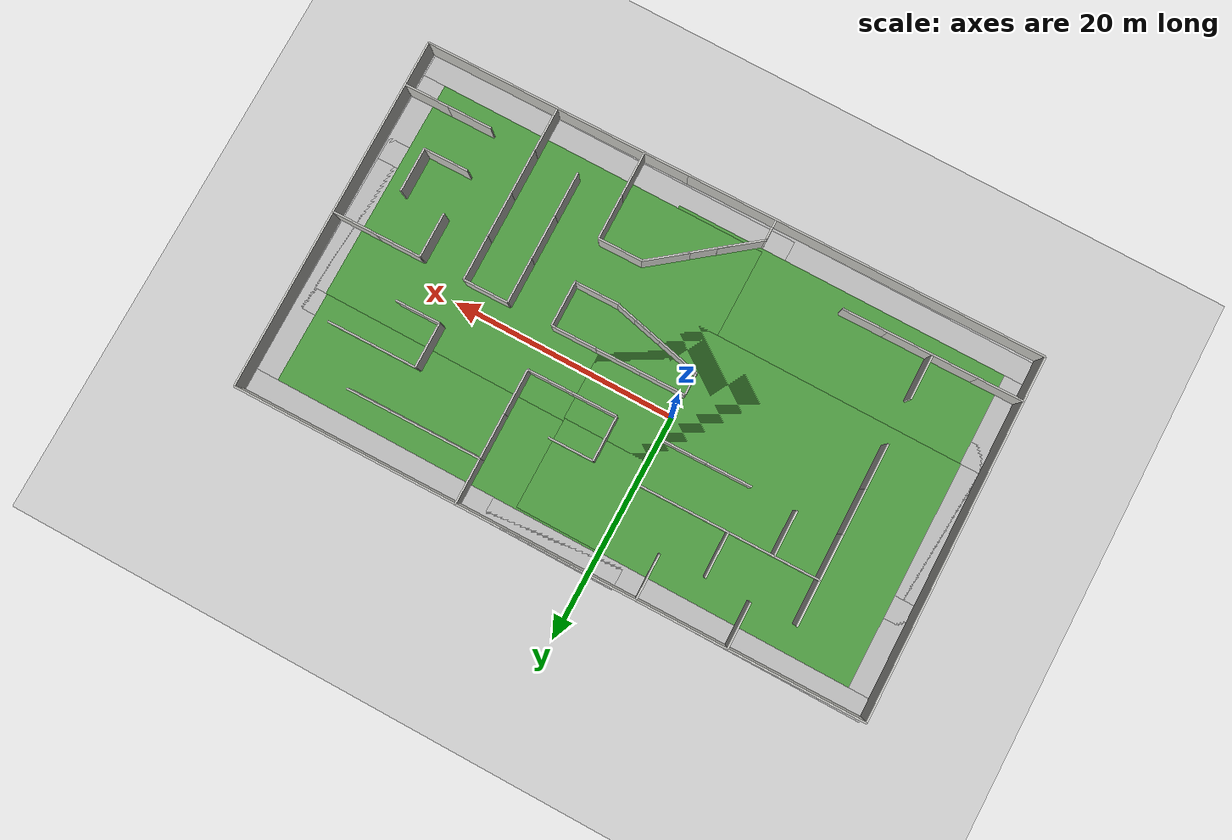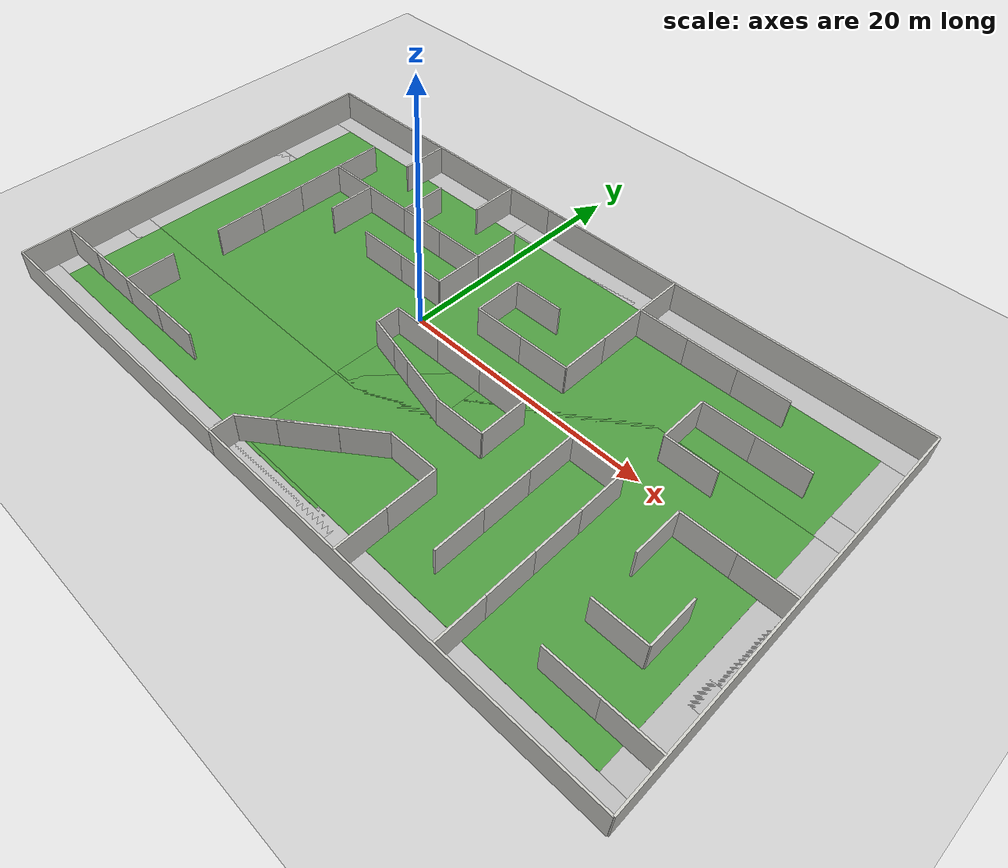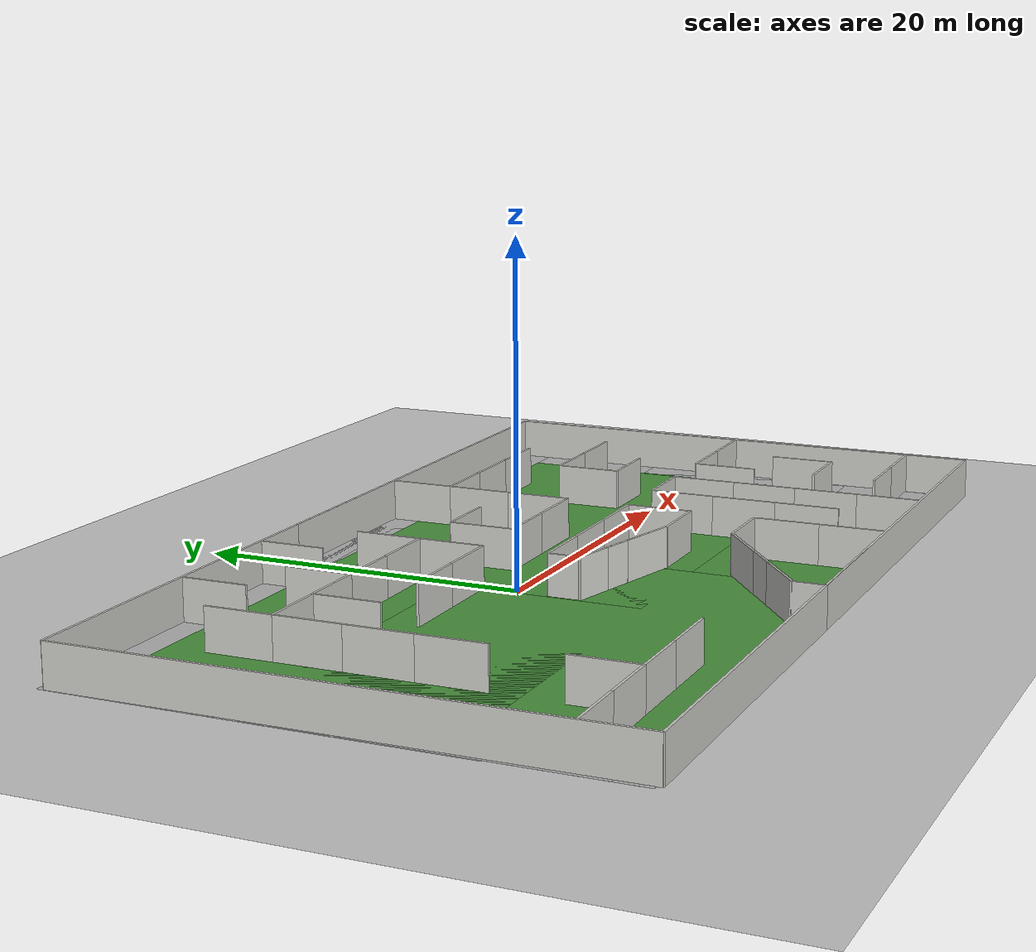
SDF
<sdf version="1.6">
 <world name="default">
  <light name="sun" type="directional">
   <pose>0 0 10 0 -0 0</pose>
   <diffuse>0.8 0.8 0.8 1</diffuse>
   <specular>0.2 0.2 0.2 1</specular>
   <attenuation>
    <range>1000</range>
    <constant>0.9</constant>
    <linear>0.01</linear>
    <quadratic>0.001</quadratic>
   </attenuation>
   <direction>-0.5 0.1 -0.9</direction>
  </light>
  <model name="ground_plane">
   <static>1</static>
   <link name="link">
    <collision name="collision">
     <geometry><plane><normal>0 0 1</normal><size>100 100</size></plane></geometry>
     <surface><friction><ode><mu>100</mu><mu2>50</mu2></ode></friction></surface>
    </collision>
    <visual name="visual">
     <cast_shadows>0</cast_shadows>
     <geometry><plane><normal>0 0 1</normal><size>100 100</size></plane></geometry>
     <material>
      <script><uri>file://media/materials/scripts/gazebo.material</uri><name>Gazebo/Grey</name></script>
     </material>
    </visual>
   </link>
  </model>
  <gravity>0 0 -9.8</gravity>
  <magnetic_field>6e-06 2.3e-05 -4.2e-05</magnetic_field>
  <atmosphere type="adiabatic"/>
  <physics name="default_physics" default="0" type="ode">
   <max_step_size>0.001</max_step_size>
   <real_time_factor>1</real_time_factor>
   <real_time_update_rate>1000</real_time_update_rate>
  </physics>
  <scene><ambient>0.4 0.4 0.4 1</ambient><background>0.7 0.7 0.7 1</background><shadows>1</shadows></scene>
  <spherical_coordinates>
   <surface_model>EARTH_WGS84</surface_model>
   <latitude_deg>0</latitude_deg>
   <longitude_deg>0</longitude_deg>
   <elevation>0</elevation>
   <heading_deg>0</heading_deg>
  </spherical_coordinates>
  <model name="quad_maze">
   <link name="w1::Wall_0">
    <collision name="Wall_0_Collision">
     <pose>0 0 1.25 0 -0 0</pose>
     <geometry><box><size>32 0.15 2.5</size></box></geometry>
    </collision>
    <visual name="Wall_0_Visual">
     <pose>0 0 1.25 0 -0 0</pose>
     <geometry><box><size>32 0.15 2.5</size></box></geometry>
     <material>
      <script><uri>file://media/materials/scripts/gazebo.material</uri><name>Gazebo/CeilingTiled</name></script>
      <ambient>1 1 1 1</ambient>
     </material>
    </visual>
    <pose>0 -40 0 0 -0 0</pose>
   </link>
   <static>1</static>
   <link name="w2::Wall_0">
    <collision name="Wall_0_Collision">
     <pose>0 0 1.25 0 -0 0</pose>
     <geometry><box><size>32 0.15 2.5</size></box></geometry>
    </collision>
    <visual name="Wall_0_Visual">
     <pose>0 0 1.25 0 -0 0</pose>
     <geometry><box><size>32 0.15 2.5</size></box></geometry>
     <material>
      <script><uri>file://media/materials/scripts/gazebo.material</uri><name>Gazebo/CeilingTiled</name></script>
      <ambient>1 1 1 1</ambient>
     </material>
    </visual>
    <pose>0 16 0 0 -0 0</pose>
   </link>
   <static>1</static>
   <link name="w3::Wall_0">
    <collision name="Wall_0_Collision">
     <pose>0 0 1.25 0 -0 0</pose>
     <geometry><box><size>32 0.15 2.5</size></box></geometry>
    </collision>
    <visual name="Wall_0_Visual">
     <pose>0 0 1.25 0 -0 0</pose>
     <geometry><box><size>32 0.15 2.5</size></box></geometry>
     <material>
      <script><uri>file://media/materials/scripts/gazebo.material</uri><name>Gazebo/CeilingTiled</name></script>
      <ambient>1 1 1 1</ambient>
     </material>
    </visual>
    <pose>16 0 0 0 -0 1.5708</pose>
   </link>
   <static>1</static>
   <link name="n1::Wall_0">
    <collision name="Wall_0_Collision">
     <pose>0 0 1.25 0 -0 0</pose>
     <geometry><box><size>32 0.15 2.5</size></box></geometry>
    </collision>
    <visual name="Wall_0_Visual">
     <pose>0 0 1.25 0 -0 0</pose>
     <geometry><box><size>32 0.15 2.5</size></box></geometry>
     <material>
      <script><uri>file://media/materials/scripts/gazebo.material</uri><name>Gazebo/CeilingTiled</name></script>
      <ambient>1 1 1 1</ambient>
     </material>
    </visual>
    <pose>16 -24 0 0 -0 1.5708</pose>
   </link>
   <static>1</static>
   <link name="w4::Wall_0">
    <collision name="Wall_0_Collision">
     <pose>0 0 1.25 0 -0 0</pose>
     <geometry><box><size>32 0.15 2.5</size></box></geometry>
    </collision>
    <visual name="Wall_0_Visual">
     <pose>0 0 1.25 0 -0 0</pose>
     <geometry><box><size>32 0.15 2.5</size></box></geometry>
     <material>
      <script><uri>file://media/materials/scripts/gazebo.material</uri><name>Gazebo/CeilingTiled</name></script>
      <ambient>1 1 1 1</ambient>
     </material>
    </visual>
    <pose>-16 0 0 0 -0 1.5708</pose>
   </link>
   <static>1</static>
   <link name="n2::Wall_0">
    <collision name="Wall_0_Collision">
     <pose>0 0 1.25 0 -0 0</pose>
     <geometry><box><size>32 0.15 2.5</size></box></geometry>
    </collision>
    <visual name="Wall_0_Visual">
     <pose>0 0 1.25 0 -0 0</pose>
     <geometry><box><size>32 0.15 2.5</size></box></geometry>
     <material>
      <script><uri>file://media/materials/scripts/gazebo.material</uri><name>Gazebo/CeilingTiled</name></script>
      <ambient>1 1 1 1</ambient>
     </material>
    </visual>
    <pose>-16 -24 0 0 -0 1.5708</pose>
   </link>
   <static>1</static>
   <link name="w5::Wall_0">
    <collision name="Wall_0_Collision">
     <pose>0 0 1.25 0 -0 0</pose>
     <geometry><box><size>4 0.15 2.5</size></box></geometry>
    </collision>
    <visual name="Wall_0_Visual">
     <pose>0 0 1.25 0 -0 0</pose>
     <geometry><box><size>4 0.15 2.5</size></box></geometry>
     <material>
      <script><uri>file://media/materials/scripts/gazebo.material</uri><name>Gazebo/CeilingTiled</name></script>
      <ambient>1 1 1 1</ambient>
     </material>
    </visual>
    <pose>14 4 0 0 -0 0</pose>
   </link>
   <static>1</static>
   <link name="w6::Wall_0">
    <collision name="Wall_0_Collision">
     <pose>0 0 1.25 0 -0 0</pose>
     <geometry><box><size>4 0.15 2.5</size></box></geometry>
    </collision>
    <visual name="Wall_0_Visual">
     <pose>0 0 1.25 0 -0 0</pose>
     <geometry><box><size>4 0.15 2.5</size></box></geometry>
     <material>
      <script><uri>file://media/materials/scripts/gazebo.material</uri><name>Gazebo/CeilingTiled</name></script>
      <ambient>1 1 1 1</ambient>
     </material>
    </visual>
    <pose>10 4 0 0 -0 0</pose>
   </link>
   <static>1</static>
   <link name="w7::Wall_0">
    <collision name="Wall_0_Collision">
     <pose>0 0 1.25 0 -0 0</pose>
     <geometry><box><size>4 0.15 2.5</size></box></geometry>
    </collision>
    <visual name="Wall_0_Visual">
     <pose>0 0 1.25 0 -0 0</pose>
     <geometry><box><size>4 0.15 2.5</size></box></geometry>
     <material>
      <script><uri>file://media/materials/scripts/gazebo.material</uri><name>Gazebo/CeilingTiled</name></script>
      <ambient>1 1 1 1</ambient>
     </material>
    </visual>
    <pose>6 4 0 0 -0 0</pose>
   </link>
   <static>1</static>
   <link name="w8::Wall_0">
    <collision name="Wall_0_Collision">
     <pose>0 0 1.25 0 -0 0</pose>
     <geometry><box><size>4 0.15 2.5</size></box></geometry>
    </collision>
    <visual name="Wall_0_Visual">
     <pose>0 0 1.25 0 -0 0</pose>
     <geometry><box><size>4 0.15 2.5</size></box></geometry>
     <material>
      <script><uri>file://media/materials/scripts/gazebo.material</uri><name>Gazebo/CeilingTiled</name></script>
      <ambient>1 1 1 1</ambient>
     </material>
    </visual>
    <pose>2 4 0 0 -0 0</pose>
   </link>
   <static>1</static>
   <link name="w9::Wall_0">
    <collision name="Wall_0_Collision">
     <pose>0 0 1.25 0 -0 0</pose>
     <geometry><box><size>4 0.15 2.5</size></box></geometry>
    </collision>
    <visual name="Wall_0_Visual">
     <pose>0 0 1.25 0 -0 0</pose>
     <geometry><box><size>4 0.15 2.5</size></box></geometry>
     <material>
      <script><uri>file://media/materials/scripts/gazebo.material</uri><name>Gazebo/CeilingTiled</name></script>
      <ambient>1 1 1 1</ambient>
     </material>
    </visual>
    <pose>2 8 0 0 -0 0</pose>
   </link>
   <static>1</static>
   <link name="w10::Wall_0">
    <collision name="Wall_0_Collision">
     <pose>0 0 1.25 0 -0 0</pose>
     <geometry><box><size>4 0.15 2.5</size></box></geometry>
    </collision>
    <visual name="Wall_0_Visual">
     <pose>0 0 1.25 0 -0 0</pose>
     <geometry><box><size>4 0.15 2.5</size></box></geometry>
     <material>
      <script><uri>file://media/materials/scripts/gazebo.material</uri><name>Gazebo/CeilingTiled</name></script>
      <ambient>1 1 1 1</ambient>
     </material>
    </visual>
    <pose>6 12 0 0 -0 0</pose>
   </link>
   <static>1</static>
   <link name="w11::Wall_0">
    <collision name="Wall_0_Collision">
     <pose>0 0 1.25 0 -0 0</pose>
     <geometry><box><size>4 0.15 2.5</size></box></geometry>
    </collision>
    <visual name="Wall_0_Visual">
     <pose>0 0 1.25 0 -0 0</pose>
     <geometry><box><size>4 0.15 2.5</size></box></geometry>
     <material>
      <script><uri>file://media/materials/scripts/gazebo.material</uri><name>Gazebo/CeilingTiled</name></script>
      <ambient>1 1 1 1</ambient>
     </material>
    </visual>
    <pose>2 0 0 0 -0 0</pose>
   </link>
   <static>1</static>
   <link name="w12::Wall_0">
    <collision name="Wall_0_Collision">
     <pose>0 0 1.25 0 -0 0</pose>
     <geometry><box><size>4 0.15 2.5</size></box></geometry>
    </collision>
    <visual name="Wall_0_Visual">
     <pose>0 0 1.25 0 -0 0</pose>
     <geometry><box><size>4 0.15 2.5</size></box></geometry>
     <material>
      <script><uri>file://media/materials/scripts/gazebo.material</uri><name>Gazebo/CeilingTiled</name></script>
      <ambient>1 1 1 1</ambient>
     </material>
    </visual>
    <pose>6 0 0 0 -0 0</pose>
   </link>
   <static>1</static>
   <link name="w13::Wall_0">
    <collision name="Wall_0_Collision">
     <pose>0 0 1.25 0 -0 0</pose>
     <geometry><box><size>4 0.15 2.5</size></box></geometry>
    </collision>
    <visual name="Wall_0_Visual">
     <pose>0 0 1.25 0 -0 0</pose>
     <geometry><box><size>4 0.15 2.5</size></box></geometry>
     <material>
      <script><uri>file://media/materials/scripts/gazebo.material</uri><name>Gazebo/CeilingTiled</name></script>
      <ambient>1 1 1 1</ambient>
     </material>
    </visual>
    <pose>10 0 0 0 -0 0</pose>
   </link>
   <static>1</static>
   <link name="w14::Wall_0">
    <collision name="Wall_0_Collision">
     <pose>0 0 1.25 0 -0 0</pose>
     <geometry><box><size>4 0.15 2.5</size></box></geometry>
    </collision>
    <visual name="Wall_0_Visual">
     <pose>0 0 1.25 0 -0 0</pose>
     <geometry><box><size>4 0.15 2.5</size></box></geometry>
     <material>
      <script><uri>file://media/materials/scripts/gazebo.material</uri><name>Gazebo/CeilingTiled</name></script>
      <ambient>1 1 1 1</ambient>
     </material>
    </visual>
    <pose>10 -4 0 0 -0 0</pose>
   </link>
   <static>1</static>
   <link name="w15::Wall_0">
    <collision name="Wall_0_Collision">
     <pose>0 0 1.25 0 -0 0</pose>
     <geometry><box><size>4 0.15 2.5</size></box></geometry>
    </collision>
    <visual name="Wall_0_Visual">
     <pose>0 0 1.25 0 -0 0</pose>
     <geometry><box><size>4 0.15 2.5</size></box></geometry>
     <material>
      <script><uri>file://media/materials/scripts/gazebo.material</uri><name>Gazebo/CeilingTiled</name></script>
      <ambient>1 1 1 1</ambient>
     </material>
    </visual>
    <pose>14 -4 0 0 -0 0</pose>
   </link>
   <static>1</static>
   <link name="w16::Wall_0">
    <collision name="Wall_0_Collision">
     <pose>0 0 1.25 0 -0 0</pose>
     <geometry><box><size>4 0.15 2.5</size></box></geometry>
    </collision>
    <visual name="Wall_0_Visual">
     <pose>0 0 1.25 0 -0 0</pose>
     <geometry><box><size>4 0.15 2.5</size></box></geometry>
     <material>
      <script><uri>file://media/materials/scripts/gazebo.material</uri><name>Gazebo/CeilingTiled</name></script>
      <ambient>1 1 1 1</ambient>
     </material>
    </visual>
    <pose>2 -4 0 0 -0 0</pose>
   </link>
   <static>1</static>
   <link name="w17::Wall_0">
    <collision name="Wall_0_Collision">
     <pose>0 0 1.25 0 -0 0</pose>
     <geometry><box><size>4 0.15 2.5</size></box></geometry>
    </collision>
    <visual name="Wall_0_Visual">
     <pose>0 0 1.25 0 -0 0</pose>
     <geometry><box><size>4 0.15 2.5</size></box></geometry>
     <material>
      <script><uri>file://media/materials/scripts/gazebo.material</uri><name>Gazebo/CeilingTiled</name></script>
      <ambient>1 1 1 1</ambient>
     </material>
    </visual>
    <pose>-6 -12 0 0 -0 0</pose>
   </link>
   <static>1</static>
   <link name="w18::Wall_0">
    <collision name="Wall_0_Collision">
     <pose>0 0 1.25 0 -0 0</pose>
     <geometry><box><size>4 0.15 2.5</size></box></geometry>
    </collision>
    <visual name="Wall_0_Visual">
     <pose>0 0 1.25 0 -0 0</pose>
     <geometry><box><size>4 0.15 2.5</size></box></geometry>
     <material>
      <script><uri>file://media/materials/scripts/gazebo.material</uri><name>Gazebo/CeilingTiled</name></script>
      <ambient>1 1 1 1</ambient>
     </material>
    </visual>
    <pose>-6 -4 0 0 -0 0</pose>
   </link>
   <static>1</static>
   <link name="w19::Wall_0">
    <collision name="Wall_0_Collision">
     <pose>0 0 1.25 0 -0 0</pose>
     <geometry><box><size>4 0.15 2.5</size></box></geometry>
    </collision>
    <visual name="Wall_0_Visual">
     <pose>0 0 1.25 0 -0 0</pose>
     <geometry><box><size>4 0.15 2.5</size></box></geometry>
     <material>
      <script><uri>file://media/materials/scripts/gazebo.material</uri><name>Gazebo/CeilingTiled</name></script>
      <ambient>1 1 1 1</ambient>
     </material>
    </visual>
    <pose>-10 -4 0 0 -0 0</pose>
   </link>
   <static>1</static>
   <link name="w20::Wall_0">
    <collision name="Wall_0_Collision">
     <pose>0 0 1.25 0 -0 0</pose>
     <geometry><box><size>4 0.15 2.5</size></box></geometry>
    </collision>
    <visual name="Wall_0_Visual">
     <pose>0 0 1.25 0 -0 0</pose>
     <geometry><box><size>4 0.15 2.5</size></box></geometry>
     <material>
      <script><uri>file://media/materials/scripts/gazebo.material</uri><name>Gazebo/CeilingTiled</name></script>
      <ambient>1 1 1 1</ambient>
     </material>
    </visual>
    <pose>-14 -4 0 0 -0 0</pose>
   </link>
   <static>1</static>
   <link name="w21::Wall_0">
    <collision name="Wall_0_Collision">
     <pose>0 0 1.25 0 -0 0</pose>
     <geometry><box><size>4 0.15 2.5</size></box></geometry>
    </collision>
    <visual name="Wall_0_Visual">
     <pose>0 0 1.25 0 -0 0</pose>
     <geometry><box><size>4 0.15 2.5</size></box></geometry>
     <material>
      <script><uri>file://media/materials/scripts/gazebo.material</uri><name>Gazebo/CeilingTiled</name></script>
      <ambient>1 1 1 1</ambient>
     </material>
    </visual>
    <pose>-6 4 0 0 -0 0</pose>
   </link>
   <static>1</static>
   <link name="v1::Wall_0">
    <collision name="Wall_0_Collision">
     <pose>0 0 1.25 0 -0 0</pose>
     <geometry><box><size>4 0.15 2.5</size></box></geometry>
    </collision>
    <visual name="Wall_0_Visual">
     <pose>0 0 1.25 0 -0 0</pose>
     <geometry><box><size>4 0.15 2.5</size></box></geometry>
     <material>
      <script><uri>file://media/materials/scripts/gazebo.material</uri><name>Gazebo/CeilingTiled</name></script>
      <ambient>1 1 1 1</ambient>
     </material>
    </visual>
    <pose>0 2 0 0 -0 1.5708</pose>
   </link>
   <static>1</static>
   <link name="v2::Wall_0">
    <collision name="Wall_0_Collision">
     <pose>0 0 1.25 0 -0 0</pose>
     <geometry><box><size>4 0.15 2.5</size></box></geometry>
    </collision>
    <visual name="Wall_0_Visual">
     <pose>0 0 1.25 0 -0 0</pose>
     <geometry><box><size>4 0.15 2.5</size></box></geometry>
     <material>
      <script><uri>file://media/materials/scripts/gazebo.material</uri><name>Gazebo/CeilingTiled</name></script>
      <ambient>1 1 1 1</ambient>
     </material>
    </visual>
    <pose>0 10 0 0 -0 1.5708</pose>
   </link>
   <static>1</static>
   <link name="v3::Wall_0">
    <collision name="Wall_0_Collision">
     <pose>0 0 1.25 0 -0 0</pose>
     <geometry><box><size>4 0.15 2.5</size></box></geometry>
    </collision>
    <visual name="Wall_0_Visual">
     <pose>0 0 1.25 0 -0 0</pose>
     <geometry><box><size>4 0.15 2.5</size></box></geometry>
     <material>
      <script><uri>file://media/materials/scripts/gazebo.material</uri><name>Gazebo/CeilingTiled</name></script>
      <ambient>1 1 1 1</ambient>
     </material>
    </visual>
    <pose>0 14 0 0 -0 1.5708</pose>
   </link>
   <static>1</static>
   <link name="v4::Wall_0">
    <collision name="Wall_0_Collision">
     <pose>0 0 1.25 0 -0 0</pose>
     <geometry><box><size>4 0.15 2.5</size></box></geometry>
    </collision>
    <visual name="Wall_0_Visual">
     <pose>0 0 1.25 0 -0 0</pose>
     <geometry><box><size>4 0.15 2.5</size></box></geometry>
     <material>
      <script><uri>file://media/materials/scripts/gazebo.material</uri><name>Gazebo/CeilingTiled</name></script>
      <ambient>1 1 1 1</ambient>
     </material>
    </visual>
    <pose>0 -6 0 0 -0 1.5708</pose>
   </link>
   <static>1</static>
   <link name="v5::Wall_0">
    <collision name="Wall_0_Collision">
     <pose>0 0 1.25 0 -0 0</pose>
     <geometry><box><size>4 0.15 2.5</size></box></geometry>
    </collision>
    <visual name="Wall_0_Visual">
     <pose>0 0 1.25 0 -0 0</pose>
     <geometry><box><size>4 0.15 2.5</size></box></geometry>
     <material>
      <script><uri>file://media/materials/scripts/gazebo.material</uri><name>Gazebo/CeilingTiled</name></script>
      <ambient>1 1 1 1</ambient>
     </material>
    </visual>
    <pose>4 -6 0 0 -0 1.5708</pose>
   </link>
   <static>1</static>
   <link name="v6::Wall_0">
    <collision name="Wall_0_Collision">
     <pose>0 0 1.25 0 -0 0</pose>
     <geometry><box><size>4 0.15 2.5</size></box></geometry>
    </collision>
    <visual name="Wall_0_Visual">
     <pose>0 0 1.25 0 -0 0</pose>
     <geometry><box><size>4 0.15 2.5</size></box></geometry>
     <material>
      <script><uri>file://media/materials/scripts/gazebo.material</uri><name>Gazebo/CeilingTiled</name></script>
      <ambient>1 1 1 1</ambient>
     </material>
    </visual>
    <pose>8 -6 0 0 -0 1.5708</pose>
   </link>
   <static>1</static>
   <link name="v7::Wall_0">
    <collision name="Wall_0_Collision">
     <pose>0 0 1.25 0 -0 0</pose>
     <geometry><box><size>4 0.15 2.5</size></box></geometry>
    </collision>
    <visual name="Wall_0_Visual">
     <pose>0 0 1.25 0 -0 0</pose>
     <geometry><box><size>4 0.15 2.5</size></box></geometry>
     <material>
      <script><uri>file://media/materials/scripts/gazebo.material</uri><name>Gazebo/CeilingTiled</name></script>
      <ambient>1 1 1 1</ambient>
     </material>
    </visual>
    <pose>-4 -6 0 0 -0 1.5708</pose>
   </link>
   <static>1</static>
   <link name="v8::Wall_0">
    <collision name="Wall_0_Collision">
     <pose>0 0 1.25 0 -0 0</pose>
     <geometry><box><size>4 0.15 2.5</size></box></geometry>
    </collision>
    <visual name="Wall_0_Visual">
     <pose>0 0 1.25 0 -0 0</pose>
     <geometry><box><size>4 0.15 2.5</size></box></geometry>
     <material>
      <script><uri>file://media/materials/scripts/gazebo.material</uri><name>Gazebo/CeilingTiled</name></script>
      <ambient>1 1 1 1</ambient>
     </material>
    </visual>
    <pose>-8 -10 0 0 -0 1.5708</pose>
   </link>
   <static>1</static>
   <link name="v9::Wall_0">
    <collision name="Wall_0_Collision">
     <pose>0 0 1.25 0 -0 0</pose>
     <geometry><box><size>4 0.15 2.5</size></box></geometry>
    </collision>
    <visual name="Wall_0_Visual">
     <pose>0 0 1.25 0 -0 0</pose>
     <geometry><box><size>4 0.15 2.5</size></box></geometry>
     <material>
      <script><uri>file://media/materials/scripts/gazebo.material</uri><name>Gazebo/CeilingTiled</name></script>
      <ambient>1 1 1 1</ambient>
     </material>
    </visual>
    <pose>-4 -10 0 0 -0 1.5708</pose>
   </link>
   <static>1</static>
   <link name="v10::Wall_0">
    <collision name="Wall_0_Collision">
     <pose>0 0 1.25 0 -0 0</pose>
     <geometry><box><size>4 0.15 2.5</size></box></geometry>
    </collision>
    <visual name="Wall_0_Visual">
     <pose>0 0 1.25 0 -0 0</pose>
     <geometry><box><size>4 0.15 2.5</size></box></geometry>
     <material>
      <script><uri>file://media/materials/scripts/gazebo.material</uri><name>Gazebo/CeilingTiled</name></script>
      <ambient>1 1 1 1</ambient>
     </material>
    </visual>
    <pose>-12 2 0 0 -0 1.5708</pose>
   </link>
   <static>1</static>
   <link name="v11::Wall_0">
    <collision name="Wall_0_Collision">
     <pose>0 0 1.25 0 -0 0</pose>
     <geometry><box><size>4 0.15 2.5</size></box></geometry>
    </collision>
    <visual name="Wall_0_Visual">
     <pose>0 0 1.25 0 -0 0</pose>
     <geometry><box><size>4 0.15 2.5</size></box></geometry>
     <material>
      <script><uri>file://media/materials/scripts/gazebo.material</uri><name>Gazebo/CeilingTiled</name></script>
      <ambient>1 1 1 1</ambient>
     </material>
    </visual>
    <pose>-12 6 0 0 -0 1.5708</pose>
   </link>
   <static>1</static>
   <link name="v12::Wall_0">
    <collision name="Wall_0_Collision">
     <pose>0 0 1.25 0 -0 0</pose>
     <geometry><box><size>4 0.15 2.5</size></box></geometry>
    </collision>
    <visual name="Wall_0_Visual">
     <pose>0 0 1.25 0 -0 0</pose>
     <geometry><box><size>4 0.15 2.5</size></box></geometry>
     <material>
      <script><uri>file://media/materials/scripts/gazebo.material</uri><name>Gazebo/CeilingTiled</name></script>
      <ambient>1 1 1 1</ambient>
     </material>
    </visual>
    <pose>-8 6 0 0 -0 1.5708</pose>
   </link>
   <static>1</static>
   <link name="v13::Wall_0">
    <collision name="Wall_0_Collision">
     <pose>0 0 1.25 0 -0 0</pose>
     <geometry><box><size>4 0.15 2.5</size></box></geometry>
    </collision>
    <visual name="Wall_0_Visual">
     <pose>0 0 1.25 0 -0 0</pose>
     <geometry><box><size>4 0.15 2.5</size></box></geometry>
     <material>
      <script><uri>file://media/materials/scripts/gazebo.material</uri><name>Gazebo/CeilingTiled</name></script>
      <ambient>1 1 1 1</ambient>
     </material>
    </visual>
    <pose>-4 6 0 0 -0 1.5708</pose>
   </link>
   <static>1</static>
   <link name="v14::Wall_0">
    <collision name="Wall_0_Collision">
     <pose>0 0 1.25 0 -0 0</pose>
     <geometry><box><size>4 0.15 2.5</size></box></geometry>
    </collision>
    <visual name="Wall_0_Visual">
     <pose>0 0 1.25 0 -0 0</pose>
     <geometry><box><size>4 0.15 2.5</size></box></geometry>
     <material>
      <script><uri>file://media/materials/scripts/gazebo.material</uri><name>Gazebo/CeilingTiled</name></script>
      <ambient>1 1 1 1</ambient>
     </material>
    </visual>
    <pose>-8 10 0 0 -0 1.5708</pose>
   </link>
   <static>1</static>
   <link name="v15::Wall_0">
    <collision name="Wall_0_Collision">
     <pose>0 0 1.25 0 -0 0</pose>
     <geometry><box><size>4 0.15 2.5</size></box></geometry>
    </collision>
    <visual name="Wall_0_Visual">
     <pose>0 0 1.25 0 -0 0</pose>
     <geometry><box><size>4 0.15 2.5</size></box></geometry>
     <material>
      <script><uri>file://media/materials/scripts/gazebo.material</uri><name>Gazebo/CeilingTiled</name></script>
      <ambient>1 1 1 1</ambient>
     </material>
    </visual>
    <pose>-12 -2 0 0 -0 1.5708</pose>
   </link>
   <static>1</static>
   <link name="v16::Wall_0">
    <collision name="Wall_0_Collision">
     <pose>0 0 1.25 0 -0 0</pose>
     <geometry><box><size>4 0.15 2.5</size></box></geometry>
    </collision>
    <visual name="Wall_0_Visual">
     <pose>0 0 1.25 0 -0 0</pose>
     <geometry><box><size>4 0.15 2.5</size></box></geometry>
     <material>
      <script><uri>file://media/materials/scripts/gazebo.material</uri><name>Gazebo/CeilingTiled</name></script>
      <ambient>1 1 1 1</ambient>
     </material>
    </visual>
    <pose>8 10 0 0 -0 1.5708</pose>
   </link>
   <static>1</static>
   <link name="v17::Wall_0">
    <collision name="Wall_0_Collision">
     <pose>0 0 1.25 0 -0 0</pose>
     <geometry><box><size>4 0.15 2.5</size></box></geometry>
    </collision>
    <visual name="Wall_0_Visual">
     <pose>0 0 1.25 0 -0 0</pose>
     <geometry><box><size>4 0.15 2.5</size></box></geometry>
     <material>
      <script><uri>file://media/materials/scripts/gazebo.material</uri><name>Gazebo/CeilingTiled</name></script>
      <ambient>1 1 1 1</ambient>
     </material>
    </visual>
    <pose>12 10 0 0 -0 1.5708</pose>
   </link>
   <static>1</static>
   <link name="v18::Wall_0">
    <collision name="Wall_0_Collision">
     <pose>0 0 1.25 0 -0 0</pose>
     <geometry><box><size>4 0.15 2.5</size></box></geometry>
    </collision>
    <visual name="Wall_0_Visual">
     <pose>0 0 1.25 0 -0 0</pose>
     <geometry><box><size>4 0.15 2.5</size></box></geometry>
     <material>
      <script><uri>file://media/materials/scripts/gazebo.material</uri><name>Gazebo/CeilingTiled</name></script>
      <ambient>1 1 1 1</ambient>
     </material>
    </visual>
    <pose>12 14 0 0 -0 1.5708</pose>
   </link>
   <static>1</static>
   <link name="v19::Wall_0">
    <collision name="Wall_0_Collision">
     <pose>0 0 1.25 0 -0 0</pose>
     <geometry><box><size>4 0.15 2.5</size></box></geometry>
    </collision>
    <visual name="Wall_0_Visual">
     <pose>0 0 1.25 0 -0 0</pose>
     <geometry><box><size>4 0.15 2.5</size></box></geometry>
     <material>
      <script><uri>file://media/materials/scripts/gazebo.material</uri><name>Gazebo/CeilingTiled</name></script>
      <ambient>1 1 1 1</ambient>
     </material>
    </visual>
    <pose>12 10 0 0 -0 1.5708</pose>
   </link>
   <static>1</static>
   <link name="v20::Wall_0">
    <collision name="Wall_0_Collision">
     <pose>0 0 1.25 0 -0 0</pose>
     <geometry><box><size>4 0.15 2.5</size></box></geometry>
    </collision>
    <visual name="Wall_0_Visual">
     <pose>0 0 1.25 0 -0 0</pose>
     <geometry><box><size>4 0.15 2.5</size></box></geometry>
     <material>
      <script><uri>file://media/materials/scripts/gazebo.material</uri><name>Gazebo/CeilingTiled</name></script>
      <ambient>1 1 1 1</ambient>
     </material>
    </visual>
    <pose>-8 -18 0 0 -0 1.5708</pose>
   </link>
   <static>1</static>
   <link name="v21::Wall_0">
    <collision name="Wall_0_Collision">
     <pose>0 0 1.25 0 -0 0</pose>
     <geometry><box><size>4 0.15 2.5</size></box></geometry>
    </collision>
    <visual name="Wall_0_Visual">
     <pose>0 0 1.25 0 -0 0</pose>
     <geometry><box><size>4 0.15 2.5</size></box></geometry>
     <material>
      <script><uri>file://media/materials/scripts/gazebo.material</uri><name>Gazebo/CeilingTiled</name></script>
      <ambient>1 1 1 1</ambient>
     </material>
    </visual>
    <pose>-8 -22 0 0 -0 1.5708</pose>
   </link>
   <static>1</static>
   <link name="n3::Wall_0">
    <collision name="Wall_0_Collision">
     <pose>0 0 1.25 0 -0 0</pose>
     <geometry><box><size>4 0.15 2.5</size></box></geometry>
    </collision>
    <visual name="Wall_0_Visual">
     <pose>0 0 1.25 0 -0 0</pose>
     <geometry><box><size>4 0.15 2.5</size></box></geometry>
     <material>
      <script><uri>file://media/materials/scripts/gazebo.material</uri><name>Gazebo/CeilingTiled</name></script>
      <ambient>1 1 1 1</ambient>
     </material>
    </visual>
    <pose>0 -10 0 0 -0 1.5708</pose>
   </link>
   <static>1</static>
   <link name="n4::Wall_0">
    <collision name="Wall_0_Collision">
     <pose>0 0 1.25 0 -0 0</pose>
     <geometry><box><size>4 0.15 2.5</size></box></geometry>
    </collision>
    <visual name="Wall_0_Visual">
     <pose>0 0 1.25 0 -0 0</pose>
     <geometry><box><size>4 0.15 2.5</size></box></geometry>
     <material>
      <script><uri>file://media/materials/scripts/gazebo.material</uri><name>Gazebo/CeilingTiled</name></script>
      <ambient>1 1 1 1</ambient>
     </material>
    </visual>
    <pose>0 -14 0 0 -0 1.5708</pose>
   </link>
   <static>1</static>
   <link name="n5::Wall_0">
    <collision name="Wall_0_Collision">
     <pose>0 0 1.25 0 -0 0</pose>
     <geometry><box><size>4 0.15 2.5</size></box></geometry>
    </collision>
    <visual name="Wall_0_Visual">
     <pose>0 0 1.25 0 -0 0</pose>
     <geometry><box><size>4 0.15 2.5</size></box></geometry>
     <material>
      <script><uri>file://media/materials/scripts/gazebo.material</uri><name>Gazebo/CeilingTiled</name></script>
      <ambient>1 1 1 1</ambient>
     </material>
    </visual>
    <pose>-4 -18 0 0 -0 1.5708</pose>
   </link>
   <static>1</static>
   <link name="n6::Wall_0">
    <collision name="Wall_0_Collision">
     <pose>0 0 1.25 0 -0 0</pose>
     <geometry><box><size>4 0.15 2.5</size></box></geometry>
    </collision>
    <visual name="Wall_0_Visual">
     <pose>0 0 1.25 0 -0 0</pose>
     <geometry><box><size>4 0.15 2.5</size></box></geometry>
     <material>
      <script><uri>file://media/materials/scripts/gazebo.material</uri><name>Gazebo/CeilingTiled</name></script>
      <ambient>1 1 1 1</ambient>
     </material>
    </visual>
    <pose>-4 -22 0 0 -0 1.5708</pose>
   </link>
   <static>1</static>
   <link name="n7::Wall_0">
    <collision name="Wall_0_Collision">
     <pose>0 0 1.25 0 -0 0</pose>
     <geometry><box><size>4 0.15 2.5</size></box></geometry>
    </collision>
    <visual name="Wall_0_Visual">
     <pose>0 0 1.25 0 -0 0</pose>
     <geometry><box><size>4 0.15 2.5</size></box></geometry>
     <material>
      <script><uri>file://media/materials/scripts/gazebo.material</uri><name>Gazebo/CeilingTiled</name></script>
      <ambient>1 1 1 1</ambient>
     </material>
    </visual>
    <pose>-8 -26 0 0 -0 1.5708</pose>
   </link>
   <static>1</static>
   <link name="n8::Wall_0">
    <collision name="Wall_0_Collision">
     <pose>0 0 1.25 0 -0 0</pose>
     <geometry><box><size>4 0.15 2.5</size></box></geometry>
    </collision>
    <visual name="Wall_0_Visual">
     <pose>0 0 1.25 0 -0 0</pose>
     <geometry><box><size>4 0.15 2.5</size></box></geometry>
     <material>
      <script><uri>file://media/materials/scripts/gazebo.material</uri><name>Gazebo/CeilingTiled</name></script>
      <ambient>1 1 1 1</ambient>
     </material>
    </visual>
    <pose>-8 -30 0 0 -0 1.5708</pose>
   </link>
   <static>1</static>
   <link name="n11::Wall_0">
    <collision name="Wall_0_Collision">
     <pose>0 0 1.25 0 -0 0</pose>
     <geometry><box><size>4 0.15 2.5</size></box></geometry>
    </collision>
    <visual name="Wall_0_Visual">
     <pose>0 0 1.25 0 -0 0</pose>
     <geometry><box><size>4 0.15 2.5</size></box></geometry>
     <material>
      <script><uri>file://media/materials/scripts/gazebo.material</uri><name>Gazebo/CeilingTiled</name></script>
      <ambient>1 1 1 1</ambient>
     </material>
    </visual>
    <pose>12 -30 0 0 -0 1.5708</pose>
   </link>
   <static>1</static>
   <link name="n12::Wall_0">
    <collision name="Wall_0_Collision">
     <pose>0 0 1.25 0 -0 0</pose>
     <geometry><box><size>4 0.15 2.5</size></box></geometry>
    </collision>
    <visual name="Wall_0_Visual">
     <pose>0 0 1.25 0 -0 0</pose>
     <geometry><box><size>4 0.15 2.5</size></box></geometry>
     <material>
      <script><uri>file://media/materials/scripts/gazebo.material</uri><name>Gazebo/CeilingTiled</name></script>
      <ambient>1 1 1 1</ambient>
     </material>
    </visual>
    <pose>12 -26 0 0 -0 1.5708</pose>
   </link>
   <static>1</static>
   <link name="n13::Wall_0">
    <collision name="Wall_0_Collision">
     <pose>0 0 1.25 0 -0 0</pose>
     <geometry><box><size>4 0.15 2.5</size></box></geometry>
    </collision>
    <visual name="Wall_0_Visual">
     <pose>0 0 1.25 0 -0 0</pose>
     <geometry><box><size>4 0.15 2.5</size></box></geometry>
     <material>
      <script><uri>file://media/materials/scripts/gazebo.material</uri><name>Gazebo/CeilingTiled</name></script>
      <ambient>1 1 1 1</ambient>
     </material>
    </visual>
    <pose>12 -34 0 0 -0 1.5708</pose>
   </link>
   <static>1</static>
   <link name="n14::Wall_0">
    <collision name="Wall_0_Collision">
     <pose>0 0 1.25 0 -0 0</pose>
     <geometry><box><size>4 0.15 2.5</size></box></geometry>
    </collision>
    <visual name="Wall_0_Visual">
     <pose>0 0 1.25 0 -0 0</pose>
     <geometry><box><size>4 0.15 2.5</size></box></geometry>
     <material>
      <script><uri>file://media/materials/scripts/gazebo.material</uri><name>Gazebo/CeilingTiled</name></script>
      <ambient>1 1 1 1</ambient>
     </material>
    </visual>
    <pose>12 -38 0 0 -0 1.5708</pose>
   </link>
   <static>1</static>
   <link name="n15::Wall_0">
    <collision name="Wall_0_Collision">
     <pose>0 0 1.25 0 -0 0</pose>
     <geometry><box><size>4 0.15 2.5</size></box></geometry>
    </collision>
    <visual name="Wall_0_Visual">
     <pose>0 0 1.25 0 -0 0</pose>
     <geometry><box><size>4 0.15 2.5</size></box></geometry>
     <material>
      <script><uri>file://media/materials/scripts/gazebo.material</uri><name>Gazebo/CeilingTiled</name></script>
      <ambient>1 1 1 1</ambient>
     </material>
    </visual>
    <pose>-10 -32 0 0 -0 0</pose>
   </link>
   <static>1</static>
   <link name="n16::Wall_0">
    <collision name="Wall_0_Collision">
     <pose>0 0 1.25 0 -0 0</pose>
     <geometry><box><size>4 0.15 2.5</size></box></geometry>
    </collision>
    <visual name="Wall_0_Visual">
     <pose>0 0 1.25 0 -0 0</pose>
     <geometry><box><size>4 0.15 2.5</size></box></geometry>
     <material>
      <script><uri>file://media/materials/scripts/gazebo.material</uri><name>Gazebo/CeilingTiled</name></script>
      <ambient>1 1 1 1</ambient>
     </material>
    </visual>
    <pose>-6 -32 0 0 -0 0</pose>
   </link>
   <static>1</static>
   <link name="n17::Wall_0">
    <collision name="Wall_0_Collision">
     <pose>0 0 1.25 0 -0 0</pose>
     <geometry><box><size>4 0.15 2.5</size></box></geometry>
    </collision>
    <visual name="Wall_0_Visual">
     <pose>0 0 1.25 0 -0 0</pose>
     <geometry><box><size>4 0.15 2.5</size></box></geometry>
     <material>
      <script><uri>file://media/materials/scripts/gazebo.material</uri><name>Gazebo/CeilingTiled</name></script>
      <ambient>1 1 1 1</ambient>
     </material>
    </visual>
    <pose>-2 -32 0 0 -0 0</pose>
   </link>
   <static>1</static>
   <link name="n18::Wall_0">
    <collision name="Wall_0_Collision">
     <pose>0 0 1.25 0 -0 0</pose>
     <geometry><box><size>4 0.15 2.5</size></box></geometry>
    </collision>
    <visual name="Wall_0_Visual">
     <pose>0 0 1.25 0 -0 0</pose>
     <geometry><box><size>4 0.15 2.5</size></box></geometry>
     <material>
      <script><uri>file://media/materials/scripts/gazebo.material</uri><name>Gazebo/CeilingTiled</name></script>
      <ambient>1 1 1 1</ambient>
     </material>
    </visual>
    <pose>2 -32 0 0 -0 0</pose>
   </link>
   <static>1</static>
   <link name="n19::Wall_0">
    <collision name="Wall_0_Collision">
     <pose>0 0 1.25 0 -0 0</pose>
     <geometry><box><size>4 0.15 2.5</size></box></geometry>
    </collision>
    <visual name="Wall_0_Visual">
     <pose>0 0 1.25 0 -0 0</pose>
     <geometry><box><size>4 0.15 2.5</size></box></geometry>
     <material>
      <script><uri>file://media/materials/scripts/gazebo.material</uri><name>Gazebo/CeilingTiled</name></script>
      <ambient>1 1 1 1</ambient>
     </material>
    </visual>
    <pose>10 -32 0 0 -0 0</pose>
   </link>
   <static>1</static>
   <link name="n20::Wall_0">
    <collision name="Wall_0_Collision">
     <pose>0 0 1.25 0 -0 0</pose>
     <geometry><box><size>4 0.15 2.5</size></box></geometry>
    </collision>
    <visual name="Wall_0_Visual">
     <pose>0 0 1.25 0 -0 0</pose>
     <geometry><box><size>4 0.15 2.5</size></box></geometry>
     <material>
      <script><uri>file://media/materials/scripts/gazebo.material</uri><name>Gazebo/CeilingTiled</name></script>
      <ambient>1 1 1 1</ambient>
     </material>
    </visual>
    <pose>-10 -24 0 0 -0 0</pose>
   </link>
   <static>1</static>
   <link name="n21::Wall_0">
    <collision name="Wall_0_Collision">
     <pose>0 0 1.25 0 -0 0</pose>
     <geometry><box><size>4 0.15 2.5</size></box></geometry>
    </collision>
    <visual name="Wall_0_Visual">
     <pose>0 0 1.25 0 -0 0</pose>
     <geometry><box><size>4 0.15 2.5</size></box></geometry>
     <material>
      <script><uri>file://media/materials/scripts/gazebo.material</uri><name>Gazebo/CeilingTiled</name></script>
      <ambient>1 1 1 1</ambient>
     </material>
    </visual>
    <pose>-6 -28 0 0 -0 0</pose>
   </link>
   <static>1</static>
   <link name="n22::Wall_0">
    <collision name="Wall_0_Collision">
     <pose>0 0 1.25 0 -0 0</pose>
     <geometry><box><size>4 0.15 2.5</size></box></geometry>
    </collision>
    <visual name="Wall_0_Visual">
     <pose>0 0 1.25 0 -0 0</pose>
     <geometry><box><size>4 0.15 2.5</size></box></geometry>
     <material>
      <script><uri>file://media/materials/scripts/gazebo.material</uri><name>Gazebo/CeilingTiled</name></script>
      <ambient>1 1 1 1</ambient>
     </material>
    </visual>
    <pose>-10 -16 0 0 -0 0</pose>
   </link>
   <static>1</static>
   <link name="n23::Wall_0">
    <collision name="Wall_0_Collision">
     <pose>0 0 1.25 0 -0 0</pose>
     <geometry><box><size>4 0.15 2.5</size></box></geometry>
    </collision>
    <visual name="Wall_0_Visual">
     <pose>0 0 1.25 0 -0 0</pose>
     <geometry><box><size>4 0.15 2.5</size></box></geometry>
     <material>
      <script><uri>file://media/materials/scripts/gazebo.material</uri><name>Gazebo/CeilingTiled</name></script>
      <ambient>1 1 1 1</ambient>
     </material>
    </visual>
    <pose>-6 -16 0 0 -0 0</pose>
   </link>
   <static>1</static>
   <link name="n24::Wall_0">
    <collision name="Wall_0_Collision">
     <pose>0 0 1.25 0 -0 0</pose>
     <geometry><box><size>4 0.15 2.5</size></box></geometry>
    </collision>
    <visual name="Wall_0_Visual">
     <pose>0 0 1.25 0 -0 0</pose>
     <geometry><box><size>4 0.15 2.5</size></box></geometry>
     <material>
      <script><uri>file://media/materials/scripts/gazebo.material</uri><name>Gazebo/CeilingTiled</name></script>
      <ambient>1 1 1 1</ambient>
     </material>
    </visual>
    <pose>9.18 -9.5 0 0 0 -0.92</pose>
   </link>
   <static>1</static>
   <link name="n25::Wall_0">
    <collision name="Wall_0_Collision">
     <pose>0 0 1.25 0 -0 0</pose>
     <geometry><box><size>4 0.15 2.5</size></box></geometry>
    </collision>
    <visual name="Wall_0_Visual">
     <pose>0 0 1.25 0 -0 0</pose>
     <geometry><box><size>4 0.15 2.5</size></box></geometry>
     <material>
      <script><uri>file://media/materials/scripts/gazebo.material</uri><name>Gazebo/CeilingTiled</name></script>
      <ambient>1 1 1 1</ambient>
     </material>
    </visual>
    <pose>11.25 -12.2 0 0 0 -0.92</pose>
   </link>
   <static>1</static>
   <link name="n26::Wall_0">
    <collision name="Wall_0_Collision">
     <pose>0 0 1.25 0 -0 0</pose>
     <geometry><box><size>4 0.15 2.5</size></box></geometry>
    </collision>
    <visual name="Wall_0_Visual">
     <pose>0 0 1.25 0 -0 0</pose>
     <geometry><box><size>4 0.15 2.5</size></box></geometry>
     <material>
      <script><uri>file://media/materials/scripts/gazebo.material</uri><name>Gazebo/CeilingTiled</name></script>
      <ambient>1 1 1 1</ambient>
     </material>
    </visual>
    <pose>12.95 -14.45 0 0 0 -0.92</pose>
   </link>
   <static>1</static>
   <link name="n28::Wall_0">
    <collision name="Wall_0_Collision">
     <pose>0 0 1.25 0 -0 0</pose>
     <geometry><box><size>4 0.15 2.5</size></box></geometry>
    </collision>
    <visual name="Wall_0_Visual">
     <pose>0 0 1.25 0 -0 0</pose>
     <geometry><box><size>4 0.15 2.5</size></box></geometry>
     <material>
      <script><uri>file://media/materials/scripts/gazebo.material</uri><name>Gazebo/CeilingTiled</name></script>
      <ambient>1 1 1 1</ambient>
     </material>
    </visual>
    <pose>3.5 -9.85 0 0 -0 1.33</pose>
   </link>
   <static>1</static>
   <link name="n29::Wall_0">
    <collision name="Wall_0_Collision">
     <pose>0 0 1.25 0 -0 0</pose>
     <geometry><box><size>4 0.15 2.5</size></box></geometry>
    </collision>
    <visual name="Wall_0_Visual">
     <pose>0 0 1.25 0 -0 0</pose>
     <geometry><box><size>4 0.15 2.5</size></box></geometry>
     <material>
      <script><uri>file://media/materials/scripts/gazebo.material</uri><name>Gazebo/CeilingTiled</name></script>
      <ambient>1 1 1 1</ambient>
     </material>
    </visual>
    <pose>3.05 -11.65 0 0 -0 1.33</pose>
   </link>
   <static>1</static>
   <link name="n30::Wall_0">
    <collision name="Wall_0_Collision">
     <pose>0 0 1.25 0 -0 0</pose>
     <geometry><box><size>4 0.15 2.5</size></box></geometry>
    </collision>
    <visual name="Wall_0_Visual">
     <pose>0 0 1.25 0 -0 0</pose>
     <geometry><box><size>4 0.15 2.5</size></box></geometry>
     <material>
      <script><uri>file://media/materials/scripts/gazebo.material</uri><name>Gazebo/CeilingTiled</name></script>
      <ambient>1 1 1 1</ambient>
     </material>
    </visual>
    <pose>2.43 -14.15 0 0 -0 1.33</pose>
   </link>
   <static>1</static>
   <link name="n31::Wall_0">
    <collision name="Wall_0_Collision">
     <pose>0 0 1.25 0 -0 0</pose>
     <geometry><box><size>4 0.15 2.5</size></box></geometry>
    </collision>
    <visual name="Wall_0_Visual">
     <pose>0 0 1.25 0 -0 0</pose>
     <geometry><box><size>4 0.15 2.5</size></box></geometry>
     <material>
      <script><uri>file://media/materials/scripts/gazebo.material</uri><name>Gazebo/CeilingTiled</name></script>
      <ambient>1 1 1 1</ambient>
     </material>
    </visual>
    <pose>-14 -28 0 0 -0 0</pose>
   </link>
   <static>1</static>
   <link name="n32::Wall_0">
    <collision name="Wall_0_Collision">
     <pose>0 0 1.25 0 -0 0</pose>
     <geometry><box><size>4 0.15 2.5</size></box></geometry>
    </collision>
    <visual name="Wall_0_Visual">
     <pose>0 0 1.25 0 -0 0</pose>
     <geometry><box><size>4 0.15 2.5</size></box></geometry>
     <material>
      <script><uri>file://media/materials/scripts/gazebo.material</uri><name>Gazebo/CeilingTiled</name></script>
      <ambient>1 1 1 1</ambient>
     </material>
    </visual>
    <pose>-14 -20 0 0 -0 0</pose>
   </link>
   <static>1</static>
   <link name="h1::Wall_0">
    <collision name="Wall_0_Collision">
     <pose>0 0 1.25 0 -0 0</pose>
     <geometry><box><size>2 0.15 2.5</size></box></geometry>
    </collision>
    <visual name="Wall_0_Visual">
     <pose>0 0 1.25 0 -0 0</pose>
     <geometry><box><size>2 0.15 2.5</size></box></geometry>
     <material>
      <script><uri>file://media/materials/scripts/gazebo.material</uri><name>Gazebo/CeilingTiled</name></script>
      <ambient>1 1 1 1</ambient>
     </material>
    </visual>
    <pose>1 -16 0 0 -0 0</pose>
   </link>
   <static>1</static>
   <link name="h2::Wall_0">
    <collision name="Wall_0_Collision">
     <pose>0 0 1.25 0 -0 0</pose>
     <geometry><box><size>2 0.15 2.5</size></box></geometry>
    </collision>
    <visual name="Wall_0_Visual">
     <pose>0 0 1.25 0 -0 0</pose>
     <geometry><box><size>2 0.15 2.5</size></box></geometry>
     <material>
      <script><uri>file://media/materials/scripts/gazebo.material</uri><name>Gazebo/CeilingTiled</name></script>
      <ambient>1 1 1 1</ambient>
     </material>
    </visual>
    <pose>15 -16 0 0 -0 0</pose>
   </link>
   <static>1</static>
   <pose>15.8405 -1.78995 0 0 0 -1.56159</pose>
  </model>
  <model name="robocup_3d_field">
   <static>1</static>
   <link name="field">
    <pose>0 0 0.01 0 -0 0</pose>
    <collision name="collision">
     <geometry><plane><normal>0 0 1</normal><size>30 20</size></plane></geometry>
     <surface><friction><ode><mu>100</mu><mu2>50</mu2></ode></friction></surface>
    </collision>
    <visual name="base1">
     <pose>0 11 0.001 0 -0 0</pose>
     <cast_shadows>0</cast_shadows>
     <geometry><plane><normal>0 0 1</normal><size>34 2</size></plane></geometry>
     <material>
      <script>
       <uri>model://robocup_3Dsim_field/materials/scripts/</uri>
       <uri>model://robocup_3Dsim_field/materials/textures/</uri>
       <name>RoboCup/FieldBorder</name>
      </script>
     </material>
    </visual>
    <visual name="base2">
     <pose>0 -11 0.001 0 -0 0</pose>
     <cast_shadows>0</cast_shadows>
     <geometry><plane><normal>0 0 1</normal><size>34 2</size></plane></geometry>
     <material>
      <script>
       <uri>model://robocup_3Dsim_field/materials/scripts/</uri>
       <uri>model://robocup_3Dsim_field/materials/textures/</uri>
       <name>RoboCup/FieldBorder</name>
      </script>
     </material>
    </visual>
    <visual name="base3">
     <pose>16 0 0.001 0 -0 0</pose>
     <cast_shadows>0</cast_shadows>
     <geometry><plane><normal>0 0 1</normal><size>2 20</size></plane></geometry>
     <material>
      <script>
       <uri>model://robocup_3Dsim_field/materials/scripts/</uri>
       <uri>model://robocup_3Dsim_field/materials/textures/</uri>
       <name>RoboCup/FieldBorder</name>
      </script>
     </material>
    </visual>
    <visual name="base4">
     <pose>-16 0 0.001 0 -0 0</pose>
     <cast_shadows>0</cast_shadows>
     <geometry><plane><normal>0 0 1</normal><size>2 20</size></plane></geometry>
     <material>
      <script>
       <uri>model://robocup_3Dsim_field/materials/scripts/</uri>
       <uri>model://robocup_3Dsim_field/materials/textures/</uri>
       <name>RoboCup/FieldBorder</name>
      </script>
     </material>
    </visual>
    <visual name="carpet">
     <cast_shadows>0</cast_shadows>
     <geometry><plane><normal>0 0 1</normal><size>30 20</size></plane></geometry>
     <material>
      <script>
       <uri>model://robocup_3Dsim_field/materials/scripts/</uri>
       <uri>model://robocup_3Dsim_field/materials/textures/</uri>
       <name>RoboCup/Grass</name>
      </script>
     </material>
    </visual>
   </link>
   <pose>14.68 2.40744 0 0 -0 0</pose>
  </model>
  <model name="robocup_3d_field_0">
   <static>1</static>
   <link name="field">
    <pose>0 0 0.01 0 -0 0</pose>
    <collision name="collision">
     <geometry><plane><normal>0 0 1</normal><size>30 20</size></plane></geometry>
     <surface><friction><ode><mu>100</mu><mu2>50</mu2></ode></friction></surface>
    </collision>
    <visual name="base1">
     <pose>0 11 0.001 0 -0 0</pose>
     <cast_shadows>0</cast_shadows>
     <geometry><plane><normal>0 0 1</normal><size>34 2</size></plane></geometry>
     <material>
      <script>
       <uri>model://robocup_3Dsim_field/materials/scripts/</uri>
       <uri>model://robocup_3Dsim_field/materials/textures/</uri>
       <name>RoboCup/FieldBorder</name>
      </script>
     </material>
    </visual>
    <visual name="base2">
     <pose>0 -11 0.001 0 -0 0</pose>
     <cast_shadows>0</cast_shadows>
     <geometry><plane><normal>0 0 1</normal><size>34 2</size></plane></geometry>
     <material>
      <script>
       <uri>model://robocup_3Dsim_field/materials/scripts/</uri>
       <uri>model://robocup_3Dsim_field/materials/textures/</uri>
       <name>RoboCup/FieldBorder</name>
      </script>
     </material>
    </visual>
    <visual name="base3">
     <pose>16 0 0.001 0 -0 0</pose>
     <cast_shadows>0</cast_shadows>
     <geometry><plane><normal>0 0 1</normal><size>2 20</size></plane></geometry>
     <material>
      <script>
       <uri>model://robocup_3Dsim_field/materials/scripts/</uri>
       <uri>model://robocup_3Dsim_field/materials/textures/</uri>
       <name>RoboCup/FieldBorder</name>
      </script>
     </material>
    </visual>
    <visual name="base4">
     <pose>-16 0 0.001 0 -0 0</pose>
     <cast_shadows>0</cast_shadows>
     <geometry><plane><normal>0 0 1</normal><size>2 20</size></plane></geometry>
     <material>
      <script>
       <uri>model://robocup_3Dsim_field/materials/scripts/</uri>
       <uri>model://robocup_3Dsim_field/materials/textures/</uri>
       <name>RoboCup/FieldBorder</name>
      </script>
     </material>
    </visual>
    <visual name="carpet">
     <cast_shadows>0</cast_shadows>
     <geometry><plane><normal>0 0 1</normal><size>30 20</size></plane></geometry>
     <material>
      <script>
       <uri>model://robocup_3Dsim_field/materials/scripts/</uri>
       <uri>model://robocup_3Dsim_field/materials/textures/</uri>
       <name>RoboCup/Grass</name>
      </script>
     </material>
    </visual>
   </link>
   <pose>-7.42521 2.23991 0 0 -0 0</pose>
  </model>
  <model name="robocup_3d_field_1">
   <static>1</static>
   <link name="field">
    <pose>0 0 0.01 0 -0 0</pose>
    <collision name="collision">
     <geometry><plane><normal>0 0 1</normal><size>30 20</size></plane></geometry>
     <surface><friction><ode><mu>100</mu><mu2>50</mu2></ode></friction></surface>
    </collision>
    <visual name="base1">
     <pose>0 11 0.001 0 -0 0</pose>
     <cast_shadows>0</cast_shadows>
     <geometry><plane><normal>0 0 1</normal><size>34 2</size></plane></geometry>
     <material>
      <script>
       <uri>model://robocup_3Dsim_field/materials/scripts/</uri>
       <uri>model://robocup_3Dsim_field/materials/textures/</uri>
       <name>RoboCup/FieldBorder</name>
      </script>
     </material>
    </visual>
    <visual name="base2">
     <pose>0 -11 0.001 0 -0 0</pose>
     <cast_shadows>0</cast_shadows>
     <geometry><plane><normal>0 0 1</normal><size>34 2</size></plane></geometry>
     <material>
      <script>
       <uri>model://robocup_3Dsim_field/materials/scripts/</uri>
       <uri>model://robocup_3Dsim_field/materials/textures/</uri>
       <name>RoboCup/FieldBorder</name>
      </script>
     </material>
    </visual>
    <visual name="base3">
     <pose>16 0 0.001 0 -0 0</pose>
     <cast_shadows>0</cast_shadows>
     <geometry><plane><normal>0 0 1</normal><size>2 20</size></plane></geometry>
     <material>
      <script>
       <uri>model://robocup_3Dsim_field/materials/scripts/</uri>
       <uri>model://robocup_3Dsim_field/materials/textures/</uri>
       <name>RoboCup/FieldBorder</name>
      </script>
     </material>
    </visual>
    <visual name="base4">
     <pose>-16 0 0.001 0 -0 0</pose>
     <cast_shadows>0</cast_shadows>
     <geometry><plane><normal>0 0 1</normal><size>2 20</size></plane></geometry>
     <material>
      <script>
       <uri>model://robocup_3Dsim_field/materials/scripts/</uri>
       <uri>model://robocup_3Dsim_field/materials/textures/</uri>
       <name>RoboCup/FieldBorder</name>
      </script>
     </material>
    </visual>
    <visual name="carpet">
     <cast_shadows>0</cast_shadows>
     <geometry><plane><normal>0 0 1</normal><size>30 20</size></plane></geometry>
     <material>
      <script>
       <uri>model://robocup_3Dsim_field/materials/scripts/</uri>
       <uri>model://robocup_3Dsim_field/materials/textures/</uri>
       <name>RoboCup/Grass</name>
      </script>
     </material>
    </visual>
   </link>
   <pose>14.8037 -5.6408 0 0 -0 0</pose>
  </model>
  <model name="robocup_3d_field_2">
   <static>1</static>
   <link name="field">
    <pose>0 0 0.01 0 -0 0</pose>
    <collision name="collision">
     <geometry><plane><normal>0 0 1</normal><size>30 20</size></plane></geometry>
     <surface><friction><ode><mu>100</mu><mu2>50</mu2></ode></friction></surface>
    </collision>
    <visual name="base1">
     <pose>0 11 0.001 0 -0 0</pose>
     <cast_shadows>0</cast_shadows>
     <geometry><plane><normal>0 0 1</normal><size>34 2</size></plane></geometry>
     <material>
      <script>
       <uri>model://robocup_3Dsim_field/materials/scripts/</uri>
       <uri>model://robocup_3Dsim_field/materials/textures/</uri>
       <name>RoboCup/FieldBorder</name>
      </script>
     </material>
    </visual>
    <visual name="base2">
     <pose>0 -11 0.001 0 -0 0</pose>
     <cast_shadows>0</cast_shadows>
     <geometry><plane><normal>0 0 1</normal><size>34 2</size></plane></geometry>
     <material>
      <script>
       <uri>model://robocup_3Dsim_field/materials/scripts/</uri>
       <uri>model://robocup_3Dsim_field/materials/textures/</uri>
       <name>RoboCup/FieldBorder</name>
      </script>
     </material>
    </visual>
    <visual name="base3">
     <pose>16 0 0.001 0 -0 0</pose>
     <cast_shadows>0</cast_shadows>
     <geometry><plane><normal>0 0 1</normal><size>2 20</size></plane></geometry>
     <material>
      <script>
       <uri>model://robocup_3Dsim_field/materials/scripts/</uri>
       <uri>model://robocup_3Dsim_field/materials/textures/</uri>
       <name>RoboCup/FieldBorder</name>
      </script>
     </material>
    </visual>
    <visual name="base4">
     <pose>-16 0 0.001 0 -0 0</pose>
     <cast_shadows>0</cast_shadows>
     <geometry><plane><normal>0 0 1</normal><size>2 20</size></plane></geometry>
     <material>
      <script>
       <uri>model://robocup_3Dsim_field/materials/scripts/</uri>
       <uri>model://robocup_3Dsim_field/materials/textures/</uri>
       <name>RoboCup/FieldBorder</name>
      </script>
     </material>
    </visual>
    <visual name="carpet">
     <cast_shadows>0</cast_shadows>
     <geometry><plane><normal>0 0 1</normal><size>30 20</size></plane></geometry>
     <material>
      <script>
       <uri>model://robocup_3Dsim_field/materials/scripts/</uri>
       <uri>model://robocup_3Dsim_field/materials/textures/</uri>
       <name>RoboCup/Grass</name>
      </script>
     </material>
    </visual>
   </link>
   <pose>-7.3466 -5.89778 0 0 -0 0</pose>
  </model>
 </world>
</sdf>
